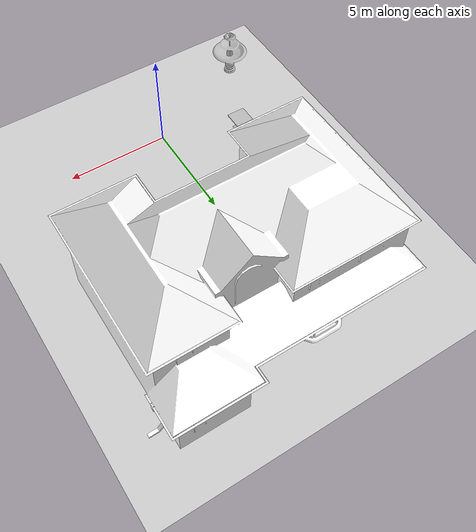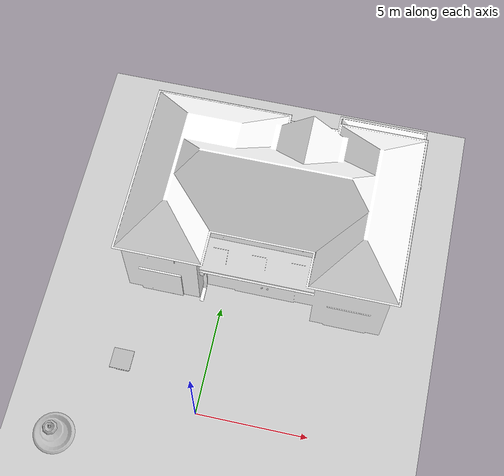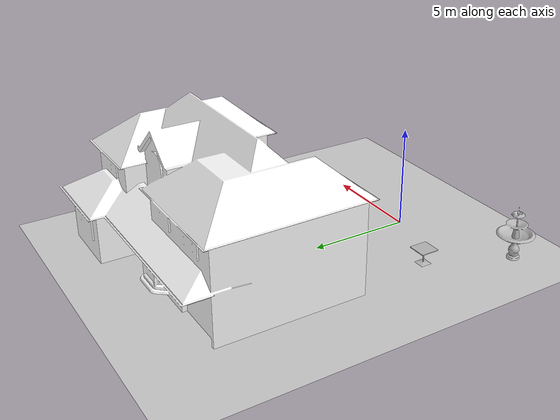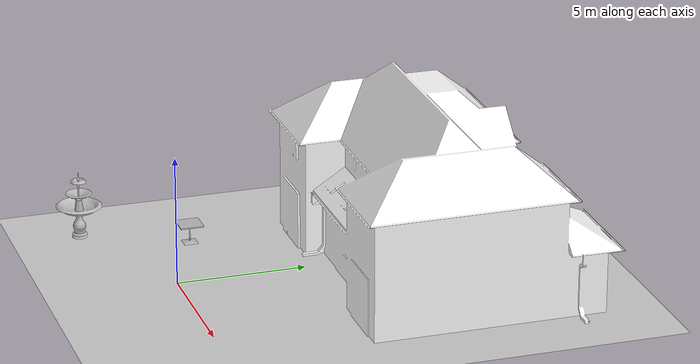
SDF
<sdf version="1.7">
 <world name="default">
  <light name="sun" type="directional">
   <pose>0 0 10 0 -0 0</pose>
   <diffuse>0.8 0.8 0.8 1</diffuse>
   <specular>0.2 0.2 0.2 1</specular>
   <attenuation>
    <range>1000</range>
    <constant>0.9</constant>
    <linear>0.01</linear>
    <quadratic>0.001</quadratic>
   </attenuation>
   <direction>-0.5 0.1 -0.9</direction>
   <spot><inner_angle>0</inner_angle><outer_angle>0</outer_angle><falloff>0</falloff></spot>
  </light>
  <model name="ground_plane">
   <static>1</static>
   <link name="link">
    <collision name="collision">
     <geometry><plane><normal>0 0 1</normal><size>100 100</size></plane></geometry>
     <surface>
      <contact><collide_bitmask>65535</collide_bitmask></contact>
      <friction><ode><mu>100</mu><mu2>50</mu2></ode></friction>
     </surface>
    </collision>
    <visual name="visual">
     <cast_shadows>0</cast_shadows>
     <geometry><plane><normal>0 0 1</normal><size>100 100</size></plane></geometry>
     <material>
      <script><uri>file://media/materials/scripts/gazebo.material</uri><name>Gazebo/Grey</name></script>
     </material>
    </visual>
   </link>
  </model>
  <gravity>0 0 -9.8</gravity>
  <magnetic_field>6e-06 2.3e-05 -4.2e-05</magnetic_field>
  <atmosphere type="adiabatic"/>
  <physics type="ode">
   <max_step_size>0.001</max_step_size>
   <real_time_factor>1</real_time_factor>
   <real_time_update_rate>1000</real_time_update_rate>
  </physics>
  <scene><ambient>0.4 0.4 0.4 1</ambient><background>0.7 0.7 0.7 1</background><shadows>1</shadows></scene>
  <spherical_coordinates>
   <surface_model>EARTH_WGS84</surface_model>
   <latitude_deg>0</latitude_deg>
   <longitude_deg>0</longitude_deg>
   <elevation>0</elevation>
   <heading_deg>0</heading_deg>
  </spherical_coordinates>
  <model name="House 2">
   <static>1</static>
   <link name="link">
    <collision name="collision">
     <geometry><mesh><uri>model://house_2/meshes/house_2.dae</uri><scale>1.5 1.5 1.5</scale></mesh></geometry>
    </collision>
    <visual name="visual">
     <geometry><mesh><uri>model://house_2/meshes/house_2.dae</uri><scale>1.5 1.5 1.5</scale></mesh></geometry>
     <material>
      <script>
       <uri>model://house_2/materials/scripts</uri>
       <uri>model://house_2/materials/textures</uri>
       <uri>model://house_1/materials/textures</uri>
       <name>House_2/Diffuse</name>
      </script>
      <shader type="normal_map_tangent_space">
       <normal_map>model://house_1/materials/textures/House_1_Normal.png</normal_map>
      </shader>
     </material>
    </visual>
   </link>
   <pose>0.500203 9.08882 0 0 -0 0</pose>
  </model>
  <model name="fountain">
   <static>1</static>
   <link name="link">
    <collision name="collision">
     <geometry><mesh><uri>model://fountain/meshes/fountain.dae</uri></mesh></geometry>
    </collision>
    <visual name="visual">
     <geometry><mesh><uri>model://fountain/meshes/fountain.dae</uri></mesh></geometry>
    </visual>
   </link>
   <pose>-5.49903 -2.39256 0 0 -0 0</pose>
  </model>
  <model name="cafe_table">
   <static>1</static>
   <link name="link">
    <collision name="surface">
     <pose>0 0 0.755 0 -0 0</pose>
     <geometry><box><size>0.913 0.913 0.04</size></box></geometry>
    </collision>
    <collision name="column">
     <pose>0 0 0.37 0 -0 0</pose>
     <geometry><box><size>0.042 0.042 0.74</size></box></geometry>
    </collision>
    <collision name="base">
     <pose>0 0 0.02 0 -0 0</pose>
     <geometry><box><size>0.56 0.56 0.04</size></box></geometry>
    </collision>
    <visual name="visual">
     <geometry><mesh><uri>model://cafe_table/meshes/cafe_table.dae</uri></mesh></geometry>
    </visual>
   </link>
   <pose>-3.66662 1.50025 0 0 -0 0</pose>
  </model>
 </world>
</sdf>
